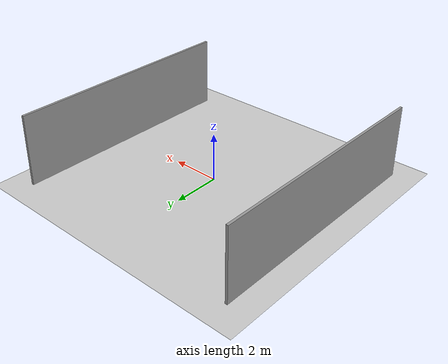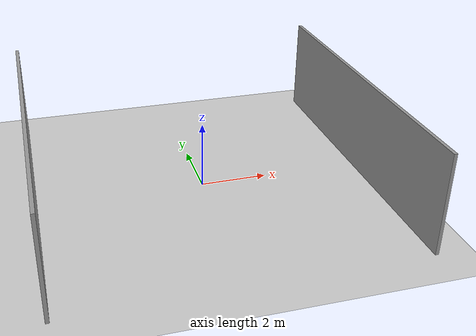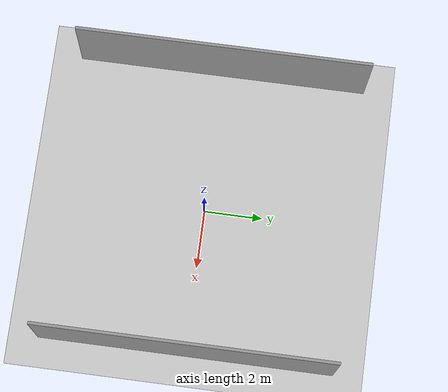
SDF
<?xml version="1.0" ?>
<sdf version="1.6">
  <world name="default">
    <include>
      <uri>model://sun</uri>
    </include>
    <include>
      <uri>model://ground_plane</uri>
    </include>
    <model name='wall_1'>
      <pose frame=''>5 0 1.5 0 -0 1.5707</pose>
      <link name='link'>
        <inertial>
          <mass>1</mass>
          <inertia>
            <ixx>0.166667</ixx>
            <ixy>0</ixy>
            <ixz>0</ixz>
            <iyy>0.166667</iyy>
            <iyz>0</iyz>
            <izz>0.166667</izz>
          </inertia>
        </inertial>
        <collision name='collision'>
          <geometry>
            <box>
              <size>10 0.1 3</size>
            </box>
          </geometry>
        </collision>
        <visual name='visual'>
          <geometry>
            <box>
              <size>10 0.1 3</size>
            </box>
          </geometry>
          <material>
            <script>
              <uri>file://media/materials/scripts/gazebo.material</uri>
              <name>Gazebo/Grey</name>
            </script>
          </material>
        </visual>
      </link>
    </model>
    <model name='wall_2'>
      <pose frame=''>-5 0 1.5 0 -0 1.5707</pose>
      <link name='link'>
        <inertial>
          <mass>1</mass>
          <inertia>
            <ixx>0.166667</ixx>
            <ixy>0</ixy>
            <ixz>0</ixz>
            <iyy>0.166667</iyy>
            <iyz>0</iyz>
            <izz>0.166667</izz>
          </inertia>
        </inertial>
        <collision name='collision'>
          <geometry>
            <box>
              <size>10 0.1 3</size>
            </box>
          </geometry>
        </collision>
        <visual name='visual'>
          <geometry>
            <box>
              <size>10 0.1 3</size>
            </box>
          </geometry>
          <material>
            <script>
              <uri>file://media/materials/scripts/gazebo.material</uri>
              <name>Gazebo/Grey</name>
            </script>
          </material>
        </visual>
      </link>
    </model>
  </world>
</sdf>
